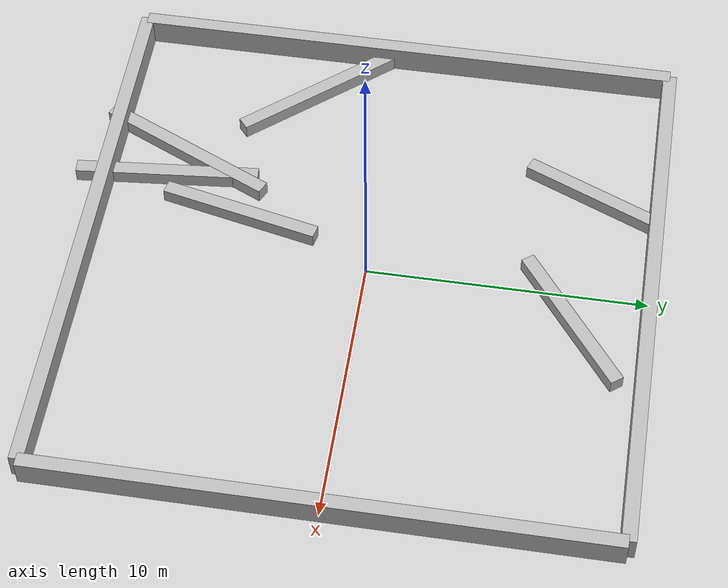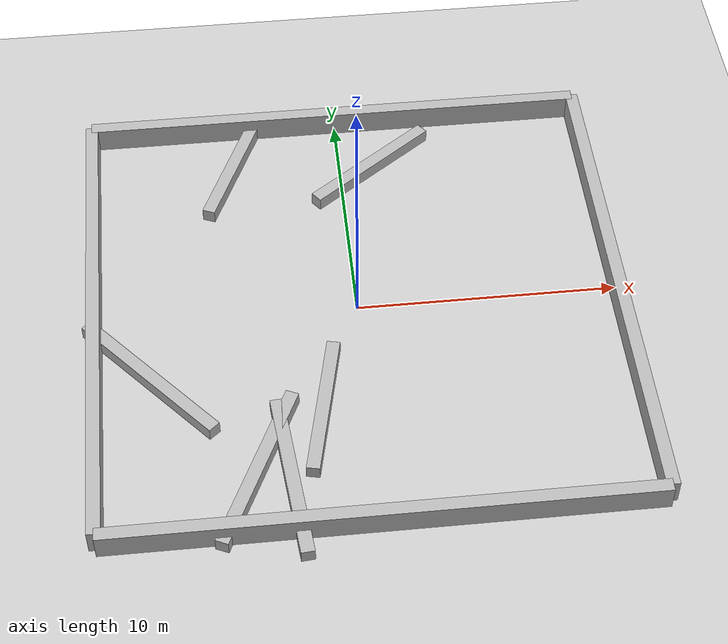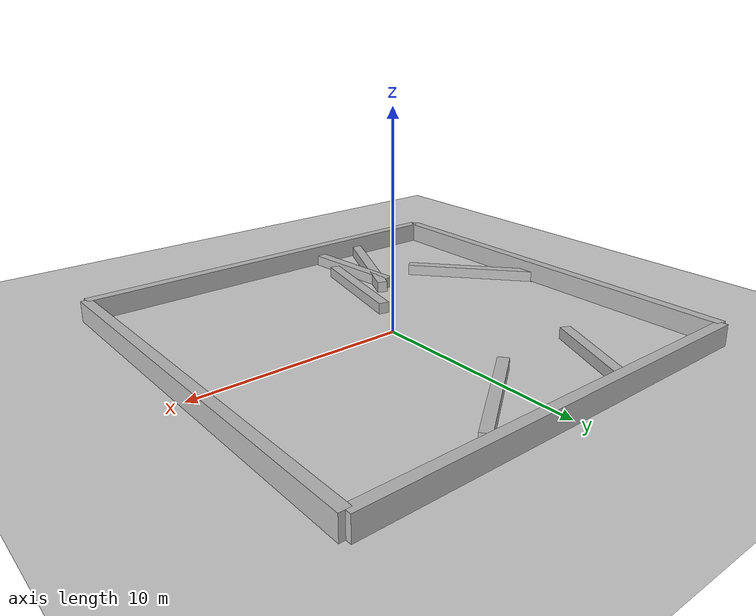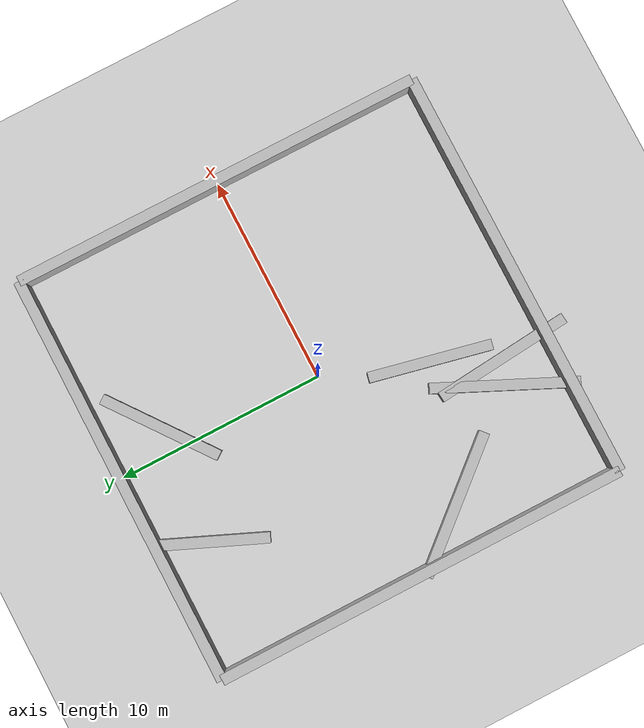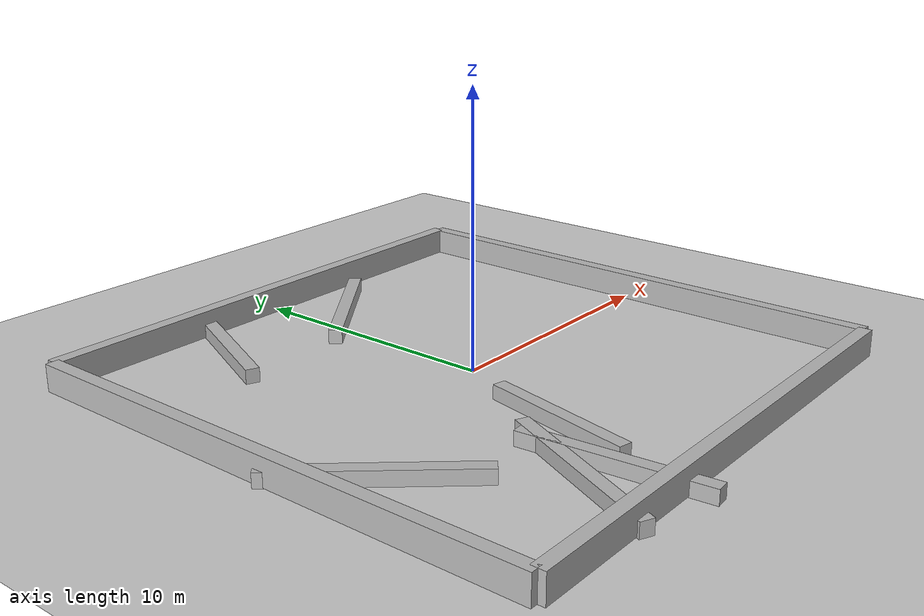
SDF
<sdf version="1.8">
 <world name="demo">
  <plugin filename="ignition-gazebo-physics-system" name="ignition::gazebo::systems::Physics"/>
  <plugin filename="ignition-gazebo-sensors-system" name="ignition::gazebo::systems::Sensors">
   <render_engine>ogre2</render_engine>
  </plugin>
  <plugin filename="ignition-gazebo-scene-broadcaster-system" name="ignition::gazebo::systems::SceneBroadcaster"/>
  <plugin filename="ignition-gazebo-user-commands-system" name="ignition::gazebo::systems::UserCommands"/>
  <light name="sun" type="directional">
   <pose>0 0 10 0 0 0</pose>
   <diffuse>0.8 0.8 0.8 1</diffuse>
   <specular>0.2 0.2 0.2 1</specular>
   <attenuation>
    <range>1000</range>
    <constant>0.9</constant>
    <linear>0.01</linear>
    <quadratic>0.001</quadratic>
   </attenuation>
   <direction>-0.5 0.1 -0.9</direction>
  </light>
  <model name="ground_plane">
   <static>true</static>
   <link name="link">
    <collision name="collision">
     <geometry><plane><normal>0 0 1</normal><size>100 100</size></plane></geometry>
    </collision>
    <visual name="visual">
     <geometry><plane><normal>0 0 1</normal><size>100 100</size></plane></geometry>
     <material>
      <ambient>0.8 0.8 0.8 1</ambient>
      <diffuse>0.8 0.8 0.8 1</diffuse>
      <specular>0.8 0.8 0.8 1</specular>
     </material>
    </visual>
   </link>
  </model>
  <model name="random_wall_0_10">
   <pose>0 10 0.5 0 0 0</pose>
   <link name="link">
    <collision name="collision"><geometry><box><size>20 0.5 1</size></box></geometry></collision>
    <visual name="visual"><geometry><box><size>20 0.5 1</size></box></geometry></visual>
   </link>
  </model>
  <model name="random_wall_0_-10">
   <pose>0 -10 0.5 0 0 0</pose>
   <link name="link">
    <collision name="collision"><geometry><box><size>20 0.5 1</size></box></geometry></collision>
    <visual name="visual"><geometry><box><size>20 0.5 1</size></box></geometry></visual>
   </link>
  </model>
  <model name="random_wall_-10_0">
   <pose>-10 0 0.5 0 0 1.5708</pose>
   <link name="link">
    <collision name="collision"><geometry><box><size>20 0.5 1</size></box></geometry></collision>
    <visual name="visual"><geometry><box><size>20 0.5 1</size></box></geometry></visual>
   </link>
  </model>
  <model name="random_wall_10_0">
   <pose>10 0 0.5 0 0 1.5708</pose>
   <link name="link">
    <collision name="collision"><geometry><box><size>20 0.5 1</size></box></geometry></collision>
    <visual name="visual"><geometry><box><size>20 0.5 1</size></box></geometry></visual>
   </link>
  </model>
  <model name="random_wall_1.2502270653859195_7.383570165442489">
   <pose>1.2502270653859195 7.383570165442489 0.0 0 0 0.6443295419898077</pose>
   <link name="link">
    <collision name="collision"><geometry><box><size>5.905049283888768 0.5 1</size></box></geometry></collision>
    <visual name="visual"><geometry><box><size>5.905049283888768 0.5 1</size></box></geometry></visual>
   </link>
  </model>
  <model name="random_wall_-3.1065458832919095_-7.811572099139154">
   <pose>-3.1065458832919095 -7.811572099139154 0.0 0 0 1.6635926954417182</pose>
   <link name="link">
    <collision name="collision"><geometry><box><size>6.662454910817867 0.5 1</size></box></geometry></collision>
    <visual name="visual"><geometry><box><size>6.662454910817867 0.5 1</size></box></geometry></visual>
   </link>
  </model>
  <model name="random_wall_-1.7239027990970417_-4.8321415588346355">
   <pose>-1.7239027990970417 -4.8321415588346355 0.0 0 0 1.3553425763633926</pose>
   <link name="link">
    <collision name="collision"><geometry><box><size>5.828690050738575 0.5 1</size></box></geometry></collision>
    <visual name="visual"><geometry><box><size>5.828690050738575 0.5 1</size></box></geometry></visual>
   </link>
  </model>
  <model name="random_wall_-4.253649598052009_-7.324404825828333">
   <pose>-4.253649598052009 -7.324404825828333 0.0 0 0 1.1366615067110666</pose>
   <link name="link">
    <collision name="collision"><geometry><box><size>6.875996404923201 0.5 1</size></box></geometry></collision>
    <visual name="visual"><geometry><box><size>6.875996404923201 0.5 1</size></box></geometry></visual>
   </link>
  </model>
  <model name="random_wall_-4.396251515003282_7.665379890039224">
   <pose>-4.396251515003282 7.665379890039224 0.0 0 0 1.1639303929791156</pose>
   <link name="link">
    <collision name="collision"><geometry><box><size>5.268850491785484 0.5 1</size></box></geometry></collision>
    <visual name="visual"><geometry><box><size>5.268850491785484 0.5 1</size></box></geometry></visual>
   </link>
  </model>
  <model name="random_wall_-7.988839111774491_-2.8468875526690773">
   <pose>-7.988839111774491 -2.8468875526690773 0.0 0 0 2.280547677029608</pose>
   <link name="link">
    <collision name="collision"><geometry><box><size>6.994857282759075 0.5 1</size></box></geometry></collision>
    <visual name="visual"><geometry><box><size>6.994857282759075 0.5 1</size></box></geometry></visual>
   </link>
  </model>
 </world>
</sdf>
